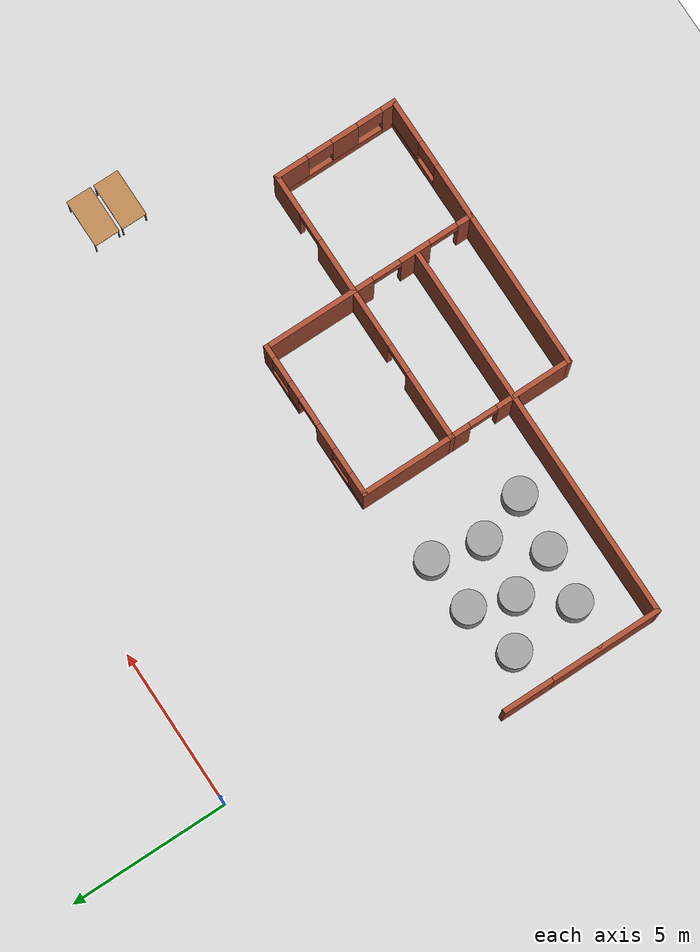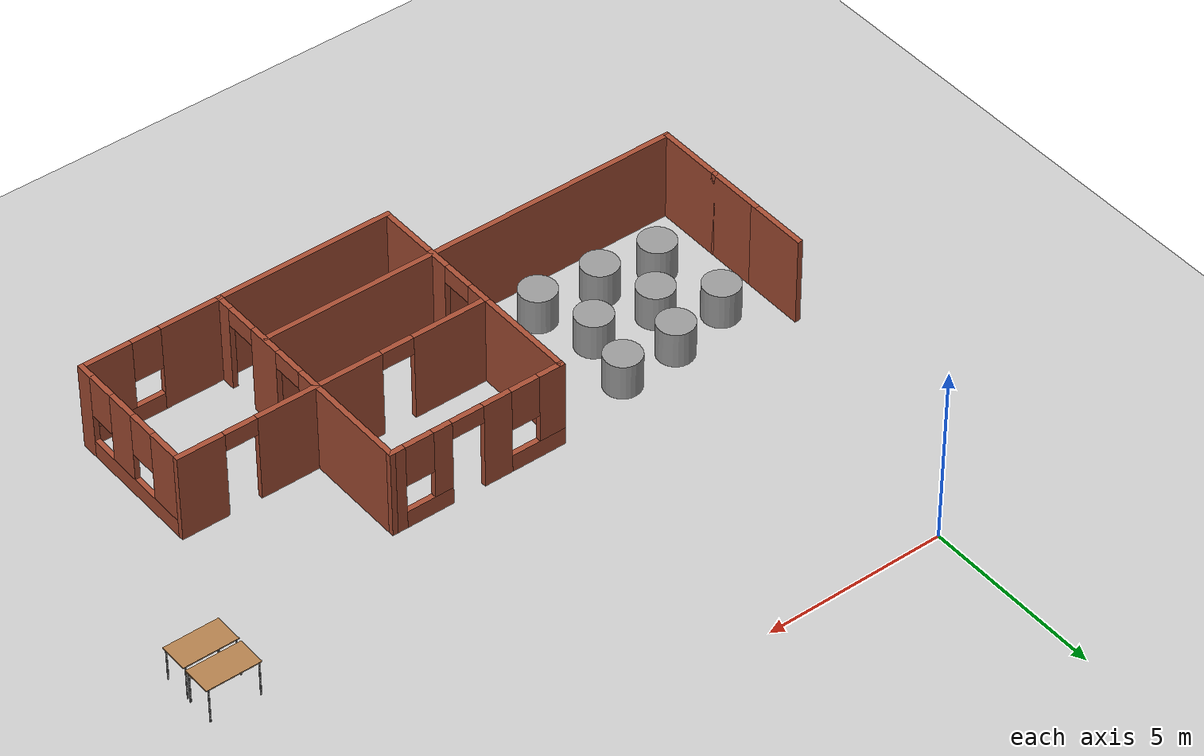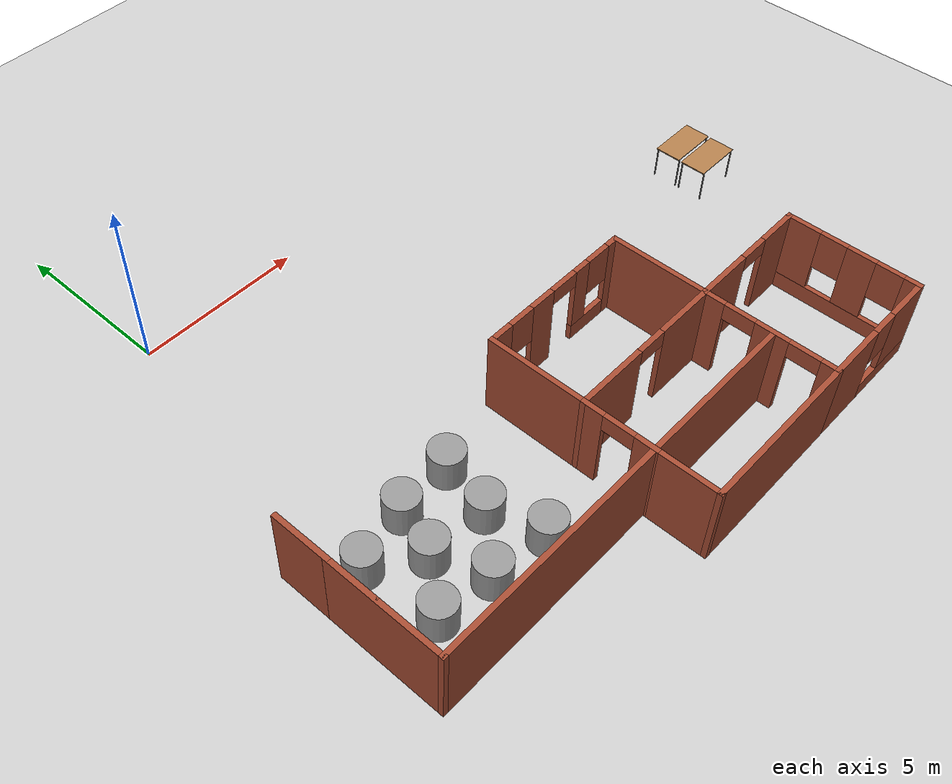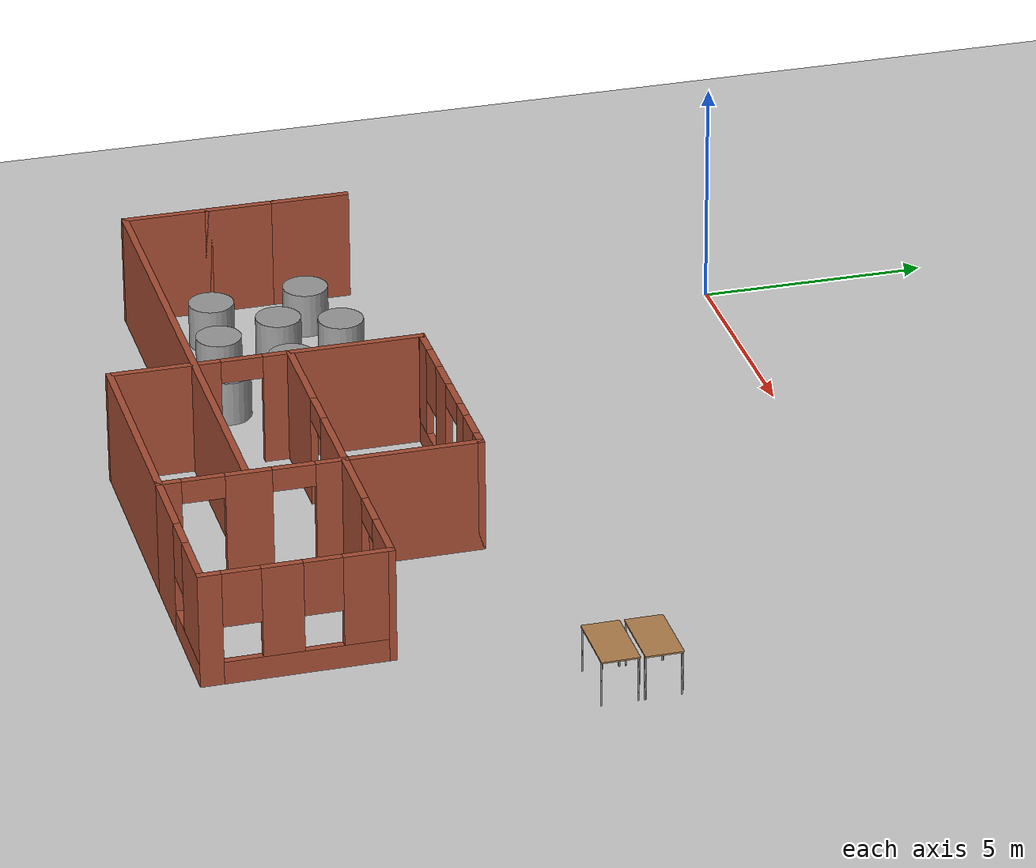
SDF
<sdf version="1.7">
 <world name="default">
  <model name="ground_plane">
   <static>1</static>
   <link name="link">
    <collision name="collision">
     <geometry><plane><normal>0 0 1</normal><size>100 100</size></plane></geometry>
     <surface><friction><ode><mu>100</mu><mu2>50</mu2></ode></friction></surface>
    </collision>
    <visual name="visual">
     <cast_shadows>0</cast_shadows>
     <geometry><plane><normal>0 0 1</normal><size>100 100</size></plane></geometry>
     <material>
      <script><uri>file://media/materials/scripts/gazebo.material</uri><name>Gazebo/Grey</name></script>
     </material>
    </visual>
   </link>
  </model>
  <model name="brick_house2">
   <pose>5.68495 -9.98238 0 0 -0 0</pose>
   <link name="Wall_45">
    <pose>1.60155 -0.643048 0 0 -0 0</pose>
    <visual name="Wall_45_Visual_0">
     <pose>-1.39493 0 1.25 0 -0 0</pose>
     <geometry><box><size>2.21014 0.15 2.5</size></box></geometry>
     <material>
      <script><uri>file://media/materials/scripts/gazebo.material</uri><name>Gazebo/Bricks</name></script>
      <ambient>1 1 1 1</ambient>
     </material>
     <meta><layer>0</layer></meta>
    </visual>
    <collision name="Wall_45_Collision_0">
     <geometry><box><size>2.21014 0.15 2.5</size></box></geometry>
     <pose>-1.39493 0 1.25 0 -0 0</pose>
    </collision>
    <visual name="Wall_45_Visual_1">
     <pose>1.55507 0 1.25 0 -0 0</pose>
     <geometry><box><size>1.88986 0.15 2.5</size></box></geometry>
     <material>
      <script><uri>file://media/materials/scripts/gazebo.material</uri><name>Gazebo/Bricks</name></script>
      <ambient>1 1 1 1</ambient>
     </material>
     <meta><layer>0</layer></meta>
    </visual>
    <collision name="Wall_45_Collision_1">
     <geometry><box><size>1.88986 0.15 2.5</size></box></geometry>
     <pose>1.55507 0 1.25 0 -0 0</pose>
    </collision>
    <visual name="Wall_45_Visual_2">
     <pose>0.160145 0 2.25 0 -0 0</pose>
     <geometry><box><size>0.9 0.15 0.5</size></box></geometry>
     <material>
      <script><uri>file://media/materials/scripts/gazebo.material</uri><name>Gazebo/Bricks</name></script>
      <ambient>1 1 1 1</ambient>
     </material>
     <meta><layer>0</layer></meta>
    </visual>
    <collision name="Wall_45_Collision_2">
     <geometry><box><size>0.9 0.15 0.5</size></box></geometry>
     <pose>0.160145 0 2.25 0 -0 0</pose>
    </collision>
   </link>
   <link name="Wall_46">
    <collision name="Wall_46_Collision">
     <geometry><box><size>3 0.15 2.5</size></box></geometry>
     <pose>0 0 1.25 0 -0 0</pose>
    </collision>
    <visual name="Wall_46_Visual">
     <pose>0 0 1.25 0 -0 0</pose>
     <geometry><box><size>3 0.15 2.5</size></box></geometry>
     <material>
      <script><uri>file://media/materials/scripts/gazebo.material</uri><name>Gazebo/Bricks</name></script>
      <ambient>1 1 1 1</ambient>
     </material>
     <meta><layer>0</layer></meta>
    </visual>
    <pose>4.02655 0.781952 0 0 -0 1.5708</pose>
   </link>
   <link name="Wall_47">
    <pose>1.60155 2.20695 0 0 -0 3.14159</pose>
    <visual name="Wall_47_Visual_0">
     <pose>-2.28479 0 1.25 0 -0 0</pose>
     <geometry><box><size>0.430426 0.15 2.5</size></box></geometry>
     <material>
      <script><uri>file://media/materials/scripts/gazebo.material</uri><name>Gazebo/Bricks</name></script>
      <ambient>1 1 1 1</ambient>
     </material>
     <meta><layer>0</layer></meta>
    </visual>
    <collision name="Wall_47_Collision_0">
     <geometry><box><size>0.430426 0.15 2.5</size></box></geometry>
     <pose>-2.28479 0 1.25 0 -0 0</pose>
    </collision>
    <visual name="Wall_47_Visual_1">
     <pose>0.550959 0 1.25 0 -0 0</pose>
     <geometry><box><size>0.79665 0.15 2.5</size></box></geometry>
     <material>
      <script><uri>file://media/materials/scripts/gazebo.material</uri><name>Gazebo/Bricks</name></script>
      <ambient>1 1 1 1</ambient>
     </material>
     <meta><layer>0</layer></meta>
    </visual>
    <collision name="Wall_47_Collision_1">
     <geometry><box><size>0.79665 0.15 2.5</size></box></geometry>
     <pose>0.550959 0 1.25 0 -0 0</pose>
    </collision>
    <visual name="Wall_47_Visual_2">
     <pose>-1.40847 0 0.25 0 -0 0</pose>
     <geometry><box><size>1.32221 0.15 0.5</size></box></geometry>
     <material>
      <script><uri>file://media/materials/scripts/gazebo.material</uri><name>Gazebo/Bricks</name></script>
      <ambient>1 1 1 1</ambient>
     </material>
     <meta><layer>0</layer></meta>
    </visual>
    <collision name="Wall_47_Collision_2">
     <geometry><box><size>1.32221 0.15 0.5</size></box></geometry>
     <pose>-1.40847 0 0.25 0 -0 0</pose>
    </collision>
    <visual name="Wall_47_Visual_3">
     <pose>1.72464 0 0.25 0 -0 0</pose>
     <geometry><box><size>1.55072 0.15 0.5</size></box></geometry>
     <material>
      <script><uri>file://media/materials/scripts/gazebo.material</uri><name>Gazebo/Bricks</name></script>
      <ambient>1 1 1 1</ambient>
     </material>
     <meta><layer>0</layer></meta>
    </visual>
    <collision name="Wall_47_Collision_3">
     <geometry><box><size>1.55072 0.15 0.5</size></box></geometry>
     <pose>1.72464 0 0.25 0 -0 0</pose>
    </collision>
    <visual name="Wall_47_Visual_4">
     <pose>-1.00847 0 1.5 0 -0 0</pose>
     <geometry><box><size>0.522208 0.15 2</size></box></geometry>
     <material>
      <script><uri>file://media/materials/scripts/gazebo.material</uri><name>Gazebo/Bricks</name></script>
      <ambient>1 1 1 1</ambient>
     </material>
     <meta><layer>0</layer></meta>
    </visual>
    <collision name="Wall_47_Collision_4">
     <geometry><box><size>0.522208 0.15 2</size></box></geometry>
     <pose>-1.00847 0 1.5 0 -0 0</pose>
    </collision>
    <visual name="Wall_47_Visual_5">
     <pose>-1.00847 0 1.5 0 -0 0</pose>
     <geometry><box><size>0.522208 0.15 2</size></box></geometry>
     <material>
      <script><uri>file://media/materials/scripts/gazebo.material</uri><name>Gazebo/Bricks</name></script>
      <ambient>1 1 1 1</ambient>
     </material>
     <meta><layer>0</layer></meta>
    </visual>
    <collision name="Wall_47_Collision_5">
     <geometry><box><size>0.522208 0.15 2</size></box></geometry>
     <pose>-1.00847 0 1.5 0 -0 0</pose>
    </collision>
    <visual name="Wall_47_Visual_6">
     <pose>2.12464 0 1.5 0 -0 0</pose>
     <geometry><box><size>0.750717 0.15 2</size></box></geometry>
     <material>
      <script><uri>file://media/materials/scripts/gazebo.material</uri><name>Gazebo/Bricks</name></script>
      <ambient>1 1 1 1</ambient>
     </material>
     <meta><layer>0</layer></meta>
    </visual>
    <collision name="Wall_47_Collision_6">
     <geometry><box><size>0.750717 0.15 2</size></box></geometry>
     <pose>2.12464 0 1.5 0 -0 0</pose>
    </collision>
    <visual name="Wall_47_Visual_7">
     <pose>-1.66957 0 1.9 0 -0 0</pose>
     <geometry><box><size>0.8 0.15 1.2</size></box></geometry>
     <material>
      <script><uri>file://media/materials/scripts/gazebo.material</uri><name>Gazebo/Bricks</name></script>
      <ambient>1 1 1 1</ambient>
     </material>
     <meta><layer>0</layer></meta>
    </visual>
    <collision name="Wall_47_Collision_7">
     <geometry><box><size>0.8 0.15 1.2</size></box></geometry>
     <pose>-1.66957 0 1.9 0 -0 0</pose>
    </collision>
    <visual name="Wall_47_Visual_8">
     <pose>1.34928 0 1.9 0 -0 0</pose>
     <geometry><box><size>0.8 0.15 1.2</size></box></geometry>
     <material>
      <script><uri>file://media/materials/scripts/gazebo.material</uri><name>Gazebo/Bricks</name></script>
      <ambient>1 1 1 1</ambient>
     </material>
     <meta><layer>0</layer></meta>
    </visual>
    <collision name="Wall_47_Collision_8">
     <geometry><box><size>0.8 0.15 1.2</size></box></geometry>
     <pose>1.34928 0 1.9 0 -0 0</pose>
    </collision>
    <visual name="Wall_47_Visual_9">
     <pose>-0.297366 0 2.25 0 -0 0</pose>
     <geometry><box><size>0.9 0.15 0.5</size></box></geometry>
     <material>
      <script><uri>file://media/materials/scripts/gazebo.material</uri><name>Gazebo/Bricks</name></script>
      <ambient>1 1 1 1</ambient>
     </material>
     <meta><layer>0</layer></meta>
    </visual>
    <collision name="Wall_47_Collision_9">
     <geometry><box><size>0.9 0.15 0.5</size></box></geometry>
     <pose>-0.297366 0 2.25 0 -0 0</pose>
    </collision>
    <visual name="Wall_47_Visual_10">
     <pose>-0.297366 0 2.25 0 -0 0</pose>
     <geometry><box><size>0.9 0.15 0.5</size></box></geometry>
     <material>
      <script><uri>file://media/materials/scripts/gazebo.material</uri><name>Gazebo/Bricks</name></script>
      <ambient>1 1 1 1</ambient>
     </material>
     <meta><layer>0</layer></meta>
    </visual>
    <collision name="Wall_47_Collision_10">
     <geometry><box><size>0.9 0.15 0.5</size></box></geometry>
     <pose>-0.297366 0 2.25 0 -0 0</pose>
    </collision>
   </link>
   <link name="Wall_48">
    <collision name="Wall_48_Collision">
     <geometry><box><size>0.16 0.15 2.5</size></box></geometry>
     <pose>0 0 1.25 0 -0 0</pose>
    </collision>
    <visual name="Wall_48_Visual">
     <pose>0 0 1.25 0 -0 0</pose>
     <geometry><box><size>0.16 0.15 2.5</size></box></geometry>
     <material>
      <script><uri>file://media/materials/scripts/gazebo.material</uri><name>Gazebo/Bricks</name></script>
      <ambient>1 1 1 1</ambient>
     </material>
     <meta><layer>0</layer></meta>
    </visual>
    <pose>-0.818451 2.20695 0 0 -0 0</pose>
   </link>
   <link name="Wall_50">
    <collision name="Wall_50_Collision">
     <geometry><box><size>3 0.15 2.5</size></box></geometry>
     <pose>0 0 1.25 0 -0 0</pose>
    </collision>
    <visual name="Wall_50_Visual">
     <pose>0 0 1.25 0 -0 0</pose>
     <geometry><box><size>3 0.15 2.5</size></box></geometry>
     <material>
      <script><uri>file://media/materials/scripts/gazebo.material</uri><name>Gazebo/Bricks</name></script>
      <ambient>1 1 1 1</ambient>
     </material>
     <meta><layer>0</layer></meta>
    </visual>
    <pose>-0.823451 0.781952 0 0 -0 1.5708</pose>
   </link>
   <link name="Wall_52">
    <pose>5.95155 -0.643048 0 0 -0 0</pose>
    <visual name="Wall_52_Visual_0">
     <pose>-1.11296 0 1.25 0 -0 0</pose>
     <geometry><box><size>1.77408 0.15 2.5</size></box></geometry>
     <material>
      <script><uri>file://media/materials/scripts/gazebo.material</uri><name>Gazebo/Bricks</name></script>
      <ambient>1 1 1 1</ambient>
     </material>
     <meta><layer>0</layer></meta>
    </visual>
    <collision name="Wall_52_Collision_0">
     <geometry><box><size>1.77408 0.15 2.5</size></box></geometry>
     <pose>-1.11296 0 1.25 0 -0 0</pose>
    </collision>
    <visual name="Wall_52_Visual_1">
     <pose>1.33704 0 1.25 0 -0 0</pose>
     <geometry><box><size>1.32592 0.15 2.5</size></box></geometry>
     <material>
      <script><uri>file://media/materials/scripts/gazebo.material</uri><name>Gazebo/Bricks</name></script>
      <ambient>1 1 1 1</ambient>
     </material>
     <meta><layer>0</layer></meta>
    </visual>
    <collision name="Wall_52_Collision_1">
     <geometry><box><size>1.32592 0.15 2.5</size></box></geometry>
     <pose>1.33704 0 1.25 0 -0 0</pose>
    </collision>
    <visual name="Wall_52_Visual_2">
     <pose>0.22408 0 2.25 0 -0 0</pose>
     <geometry><box><size>0.9 0.15 0.5</size></box></geometry>
     <material>
      <script><uri>file://media/materials/scripts/gazebo.material</uri><name>Gazebo/Bricks</name></script>
      <ambient>1 1 1 1</ambient>
     </material>
     <meta><layer>0</layer></meta>
    </visual>
    <collision name="Wall_52_Collision_2">
     <geometry><box><size>0.9 0.15 0.5</size></box></geometry>
     <pose>0.22408 0 2.25 0 -0 0</pose>
    </collision>
   </link>
   <link name="Wall_54">
    <pose>4.02655 -2.56805 0 0 -0 -1.5708</pose>
    <visual name="Wall_54_Visual_0">
     <pose>-1.65357 0 1.25 0 -0 0</pose>
     <geometry><box><size>0.692853 0.15 2.5</size></box></geometry>
     <material>
      <script><uri>file://media/materials/scripts/gazebo.material</uri><name>Gazebo/Bricks</name></script>
      <ambient>1 1 1 1</ambient>
     </material>
     <meta><layer>0</layer></meta>
    </visual>
    <collision name="Wall_54_Collision_0">
     <geometry><box><size>0.692853 0.15 2.5</size></box></geometry>
     <pose>-1.65357 0 1.25 0 -0 0</pose>
    </collision>
    <visual name="Wall_54_Visual_1">
     <pose>0.080528 0 1.25 0 -0 0</pose>
     <geometry><box><size>0.97535 0.15 2.5</size></box></geometry>
     <material>
      <script><uri>file://media/materials/scripts/gazebo.material</uri><name>Gazebo/Bricks</name></script>
      <ambient>1 1 1 1</ambient>
     </material>
     <meta><layer>0</layer></meta>
    </visual>
    <collision name="Wall_54_Collision_1">
     <geometry><box><size>0.97535 0.15 2.5</size></box></geometry>
     <pose>0.080528 0 1.25 0 -0 0</pose>
    </collision>
    <visual name="Wall_54_Visual_2">
     <pose>1.7341 0 1.25 0 -0 0</pose>
     <geometry><box><size>0.531797 0.15 2.5</size></box></geometry>
     <material>
      <script><uri>file://media/materials/scripts/gazebo.material</uri><name>Gazebo/Bricks</name></script>
      <ambient>1 1 1 1</ambient>
     </material>
     <meta><layer>0</layer></meta>
    </visual>
    <collision name="Wall_54_Collision_2">
     <geometry><box><size>0.531797 0.15 2.5</size></box></geometry>
     <pose>1.7341 0 1.25 0 -0 0</pose>
    </collision>
    <visual name="Wall_54_Visual_3">
     <pose>-0.857147 0 2.25 0 -0 0</pose>
     <geometry><box><size>0.9 0.15 0.5</size></box></geometry>
     <material>
      <script><uri>file://media/materials/scripts/gazebo.material</uri><name>Gazebo/Bricks</name></script>
      <ambient>1 1 1 1</ambient>
     </material>
     <meta><layer>0</layer></meta>
    </visual>
    <collision name="Wall_54_Collision_3">
     <geometry><box><size>0.9 0.15 0.5</size></box></geometry>
     <pose>-0.857147 0 2.25 0 -0 0</pose>
    </collision>
    <visual name="Wall_54_Visual_4">
     <pose>1.0182 0 2.25 0 -0 0</pose>
     <geometry><box><size>0.9 0.15 0.5</size></box></geometry>
     <material>
      <script><uri>file://media/materials/scripts/gazebo.material</uri><name>Gazebo/Bricks</name></script>
      <ambient>1 1 1 1</ambient>
     </material>
     <meta><layer>0</layer></meta>
    </visual>
    <collision name="Wall_54_Collision_4">
     <geometry><box><size>0.9 0.15 0.5</size></box></geometry>
     <pose>1.0182 0 2.25 0 -0 0</pose>
    </collision>
   </link>
   <link name="Wall_55">
    <pose>5.95155 -4.49305 0 0 -0 0</pose>
    <visual name="Wall_55_Visual_0">
     <pose>-1.11083 0 1.25 0 -0 0</pose>
     <geometry><box><size>1.77834 0.15 2.5</size></box></geometry>
     <material>
      <script><uri>file://media/materials/scripts/gazebo.material</uri><name>Gazebo/Bricks</name></script>
      <ambient>1 1 1 1</ambient>
     </material>
     <meta><layer>0</layer></meta>
    </visual>
    <collision name="Wall_55_Collision_0">
     <geometry><box><size>1.77834 0.15 2.5</size></box></geometry>
     <pose>-1.11083 0 1.25 0 -0 0</pose>
    </collision>
    <visual name="Wall_55_Visual_1">
     <pose>0.88917 0 0.25 0 -0 0</pose>
     <geometry><box><size>2.22166 0.15 0.5</size></box></geometry>
     <material>
      <script><uri>file://media/materials/scripts/gazebo.material</uri><name>Gazebo/Bricks</name></script>
      <ambient>1 1 1 1</ambient>
     </material>
     <meta><layer>0</layer></meta>
    </visual>
    <collision name="Wall_55_Collision_1">
     <geometry><box><size>2.22166 0.15 0.5</size></box></geometry>
     <pose>0.88917 0 0.25 0 -0 0</pose>
    </collision>
    <visual name="Wall_55_Visual_2">
     <pose>1.28917 0 1.5 0 -0 0</pose>
     <geometry><box><size>1.42166 0.15 2</size></box></geometry>
     <material>
      <script><uri>file://media/materials/scripts/gazebo.material</uri><name>Gazebo/Bricks</name></script>
      <ambient>1 1 1 1</ambient>
     </material>
     <meta><layer>0</layer></meta>
    </visual>
    <collision name="Wall_55_Collision_2">
     <geometry><box><size>1.42166 0.15 2</size></box></geometry>
     <pose>1.28917 0 1.5 0 -0 0</pose>
    </collision>
    <visual name="Wall_55_Visual_3">
     <pose>0.17834 0 1.9 0 -0 0</pose>
     <geometry><box><size>0.8 0.15 1.2</size></box></geometry>
     <material>
      <script><uri>file://media/materials/scripts/gazebo.material</uri><name>Gazebo/Bricks</name></script>
      <ambient>1 1 1 1</ambient>
     </material>
     <meta><layer>0</layer></meta>
    </visual>
    <collision name="Wall_55_Collision_3">
     <geometry><box><size>0.8 0.15 1.2</size></box></geometry>
     <pose>0.17834 0 1.9 0 -0 0</pose>
    </collision>
   </link>
   <link name="Wall_56">
    <pose>7.87655 -2.56805 0 0 -0 1.5708</pose>
    <visual name="Wall_56_Visual_0">
     <pose>-1.75484 0 1.25 0 -0 0</pose>
     <geometry><box><size>0.490316 0.15 2.5</size></box></geometry>
     <material>
      <script><uri>file://media/materials/scripts/gazebo.material</uri><name>Gazebo/Bricks</name></script>
      <ambient>1 1 1 1</ambient>
     </material>
     <meta><layer>0</layer></meta>
    </visual>
    <collision name="Wall_56_Collision_0">
     <geometry><box><size>0.490316 0.15 2.5</size></box></geometry>
     <pose>-1.75484 0 1.25 0 -0 0</pose>
    </collision>
    <visual name="Wall_56_Visual_1">
     <pose>0.245158 0 0.25 0 -0 0</pose>
     <geometry><box><size>3.50968 0.15 0.5</size></box></geometry>
     <material>
      <script><uri>file://media/materials/scripts/gazebo.material</uri><name>Gazebo/Bricks</name></script>
      <ambient>1 1 1 1</ambient>
     </material>
     <meta><layer>0</layer></meta>
    </visual>
    <collision name="Wall_56_Collision_1">
     <geometry><box><size>3.50968 0.15 0.5</size></box></geometry>
     <pose>0.245158 0 0.25 0 -0 0</pose>
    </collision>
    <visual name="Wall_56_Visual_2">
     <pose>-0.286359 0 1.5 0 -0 0</pose>
     <geometry><box><size>0.846649 0.15 2</size></box></geometry>
     <material>
      <script><uri>file://media/materials/scripts/gazebo.material</uri><name>Gazebo/Bricks</name></script>
      <ambient>1 1 1 1</ambient>
     </material>
     <meta><layer>0</layer></meta>
    </visual>
    <collision name="Wall_56_Collision_2">
     <geometry><box><size>0.846649 0.15 2</size></box></geometry>
     <pose>-0.286359 0 1.5 0 -0 0</pose>
    </collision>
    <visual name="Wall_56_Visual_3">
     <pose>1.46848 0 1.5 0 -0 0</pose>
     <geometry><box><size>1.06303 0.15 2</size></box></geometry>
     <material>
      <script><uri>file://media/materials/scripts/gazebo.material</uri><name>Gazebo/Bricks</name></script>
      <ambient>1 1 1 1</ambient>
     </material>
     <meta><layer>0</layer></meta>
    </visual>
    <collision name="Wall_56_Collision_3">
     <geometry><box><size>1.06303 0.15 2</size></box></geometry>
     <pose>1.46848 0 1.5 0 -0 0</pose>
    </collision>
    <visual name="Wall_56_Visual_4">
     <pose>-1.10968 0 1.9 0 -0 0</pose>
     <geometry><box><size>0.8 0.15 1.2</size></box></geometry>
     <material>
      <script><uri>file://media/materials/scripts/gazebo.material</uri><name>Gazebo/Bricks</name></script>
      <ambient>1 1 1 1</ambient>
     </material>
     <meta><layer>0</layer></meta>
    </visual>
    <collision name="Wall_56_Collision_4">
     <geometry><box><size>0.8 0.15 1.2</size></box></geometry>
     <pose>-1.10968 0 1.9 0 -0 0</pose>
    </collision>
    <visual name="Wall_56_Visual_5">
     <pose>0.536965 0 1.9 0 -0 0</pose>
     <geometry><box><size>0.8 0.15 1.2</size></box></geometry>
     <material>
      <script><uri>file://media/materials/scripts/gazebo.material</uri><name>Gazebo/Bricks</name></script>
      <ambient>1 1 1 1</ambient>
     </material>
     <meta><layer>0</layer></meta>
    </visual>
    <collision name="Wall_56_Collision_5">
     <geometry><box><size>0.8 0.15 1.2</size></box></geometry>
     <pose>0.536965 0 1.9 0 -0 0</pose>
    </collision>
   </link>
   <link name="Wall_58">
    <collision name="Wall_58_Collision">
     <geometry><box><size>12 0.15 2.5</size></box></geometry>
     <pose>0 0 1.25 0 -0 0</pose>
    </collision>
    <visual name="Wall_58_Visual">
     <pose>0 0 1.25 0 -0 0</pose>
     <geometry><box><size>12 0.15 2.5</size></box></geometry>
     <material>
      <script><uri>file://media/materials/scripts/gazebo.material</uri><name>Gazebo/Bricks</name></script>
      <ambient>1 1 1 1</ambient>
     </material>
     <meta><layer>0</layer></meta>
    </visual>
    <pose>-1.95155 -2.6899 0 0 -0 3.14159</pose>
   </link>
   <link name="Wall_61">
    <collision name="Wall_61_Collision">
     <geometry><box><size>0.15 0.15 2.5</size></box></geometry>
     <pose>0 0 1.25 0 -0 0</pose>
    </collision>
    <visual name="Wall_61_Visual">
     <pose>0 0 1.25 0 -0 0</pose>
     <geometry><box><size>0.15 0.15 2.5</size></box></geometry>
     <material>
      <script><uri>file://media/materials/scripts/gazebo.material</uri><name>Gazebo/Bricks</name></script>
      <ambient>1 1 1 1</ambient>
     </material>
     <meta><layer>0</layer></meta>
    </visual>
    <pose>-7.87655 -0.839896 0 0 -0 0</pose>
   </link>
   <link name="Wall_67">
    <collision name="Wall_67_Collision">
     <geometry><box><size>3.5 0.15 2.5</size></box></geometry>
     <pose>0 0 1.25 0 -0 0</pose>
    </collision>
    <visual name="Wall_67_Visual">
     <pose>0 0 1.25 0 -0 0</pose>
     <geometry><box><size>3.5 0.15 2.5</size></box></geometry>
     <material>
      <script><uri>file://media/materials/scripts/gazebo.material</uri><name>Gazebo/Bricks</name></script>
      <ambient>1 1 1 1</ambient>
     </material>
     <meta><layer>0</layer></meta>
    </visual>
    <pose>-7.87655 -1.0149 0 0 -0 1.5708</pose>
   </link>
   <link name="Wall_71">
    <collision name="Wall_71_Collision">
     <geometry><box><size>1.75 0.15 2.5</size></box></geometry>
     <pose>0 0 1.25 0 -0 0</pose>
    </collision>
    <visual name="Wall_71_Visual">
     <pose>0 0 1.25 0 -0 0</pose>
     <geometry><box><size>1.75 0.15 2.5</size></box></geometry>
     <material>
      <script><uri>file://media/materials/scripts/gazebo.material</uri><name>Gazebo/Bricks</name></script>
      <ambient>1 1 1 1</ambient>
     </material>
     <meta><layer>0</layer></meta>
    </visual>
    <pose>-7.87655 1.4601 0 0 -0 1.5708</pose>
   </link>
   <link name="Wall_73">
    <pose>-0.823451 -1.69305 0 0 -0 -1.5708</pose>
    <visual name="Wall_73_Visual_0">
     <pose>-0.790009 0 1.25 0 -0 0</pose>
     <geometry><box><size>0.669982 0.15 2.5</size></box></geometry>
     <material>
      <script><uri>file://media/materials/scripts/gazebo.material</uri><name>Gazebo/Bricks</name></script>
      <ambient>1 1 1 1</ambient>
     </material>
     <meta><layer>0</layer></meta>
    </visual>
    <collision name="Wall_73_Collision_0">
     <geometry><box><size>0.669982 0.15 2.5</size></box></geometry>
     <pose>-0.790009 0 1.25 0 -0 0</pose>
    </collision>
    <visual name="Wall_73_Visual_1">
     <pose>0.784991 0 1.25 0 -0 0</pose>
     <geometry><box><size>0.680018 0.15 2.5</size></box></geometry>
     <material>
      <script><uri>file://media/materials/scripts/gazebo.material</uri><name>Gazebo/Bricks</name></script>
      <ambient>1 1 1 1</ambient>
     </material>
     <meta><layer>0</layer></meta>
    </visual>
    <collision name="Wall_73_Collision_1">
     <geometry><box><size>0.680018 0.15 2.5</size></box></geometry>
     <pose>0.784991 0 1.25 0 -0 0</pose>
    </collision>
    <visual name="Wall_73_Visual_2">
     <pose>-0.005018 0 2.25 0 -0 0</pose>
     <geometry><box><size>0.9 0.15 0.5</size></box></geometry>
     <material>
      <script><uri>file://media/materials/scripts/gazebo.material</uri><name>Gazebo/Bricks</name></script>
      <ambient>1 1 1 1</ambient>
     </material>
     <meta><layer>0</layer></meta>
    </visual>
    <collision name="Wall_73_Collision_2">
     <geometry><box><size>0.9 0.15 0.5</size></box></geometry>
     <pose>-0.005018 0 2.25 0 -0 0</pose>
    </collision>
   </link>
   <link name="Wall_76">
    <collision name="Wall_76_Collision">
     <geometry><box><size>5 0.15 2.5</size></box></geometry>
     <pose>0 0 1.25 0 -0 0</pose>
    </collision>
    <visual name="Wall_76_Visual">
     <pose>0 0 1.25 0 -0 0</pose>
     <geometry><box><size>5 0.15 2.5</size></box></geometry>
     <material>
      <script><uri>file://media/materials/scripts/gazebo.material</uri><name>Gazebo/Bricks</name></script>
      <ambient>1 1 1 1</ambient>
     </material>
     <meta><layer>0</layer></meta>
    </visual>
    <pose>1.60155 -4.49305 0 0 -0 3.14159</pose>
   </link>
   <link name="Wall_77">
    <collision name="Wall_77_Collision">
     <geometry><box><size>1.9 0.15 2.5</size></box></geometry>
     <pose>0 0 1.25 0 -0 0</pose>
    </collision>
    <visual name="Wall_77_Visual">
     <pose>0 0 1.25 0 -0 0</pose>
     <geometry><box><size>1.9 0.15 2.5</size></box></geometry>
     <material>
      <script><uri>file://media/materials/scripts/gazebo.material</uri><name>Gazebo/Bricks</name></script>
      <ambient>1 1 1 1</ambient>
     </material>
     <meta><layer>0</layer></meta>
    </visual>
    <pose>-0.823451 -3.61805 0 0 -0 1.5708</pose>
   </link>
   <static>1</static>
  </model>
  <model name="table">
   <static>1</static>
   <link name="link">
    <collision name="surface">
     <pose>0 0 1 0 -0 0</pose>
     <geometry><box><size>1.5 0.8 0.03</size></box></geometry>
     <surface><friction><ode><mu>0.6</mu><mu2>0.6</mu2></ode></friction></surface>
    </collision>
    <visual name="visual1">
     <pose>0 0 1 0 -0 0</pose>
     <geometry><box><size>1.5 0.8 0.03</size></box></geometry>
     <material>
      <script><uri>file://media/materials/scripts/gazebo.material</uri><name>Gazebo/Wood</name></script>
     </material>
    </visual>
    <collision name="front_left_leg">
     <pose>0.68 0.38 0.5 0 -0 0</pose>
     <geometry><cylinder><radius>0.02</radius><length>1</length></cylinder></geometry>
    </collision>
    <visual name="front_left_leg">
     <pose>0.68 0.38 0.5 0 -0 0</pose>
     <geometry><cylinder><radius>0.02</radius><length>1</length></cylinder></geometry>
     <material>
      <script><uri>file://media/materials/scripts/gazebo.material</uri><name>Gazebo/Grey</name></script>
     </material>
    </visual>
    <collision name="front_right_leg">
     <pose>0.68 -0.38 0.5 0 -0 0</pose>
     <geometry><cylinder><radius>0.02</radius><length>1</length></cylinder></geometry>
    </collision>
    <visual name="front_right_leg">
     <pose>0.68 -0.38 0.5 0 -0 0</pose>
     <geometry><cylinder><radius>0.02</radius><length>1</length></cylinder></geometry>
     <material>
      <script><uri>file://media/materials/scripts/gazebo.material</uri><name>Gazebo/Grey</name></script>
     </material>
    </visual>
    <collision name="back_right_leg">
     <pose>-0.68 -0.38 0.5 0 -0 0</pose>
     <geometry><cylinder><radius>0.02</radius><length>1</length></cylinder></geometry>
    </collision>
    <visual name="back_right_leg">
     <pose>-0.68 -0.38 0.5 0 -0 0</pose>
     <geometry><cylinder><radius>0.02</radius><length>1</length></cylinder></geometry>
     <material>
      <script><uri>file://media/materials/scripts/gazebo.material</uri><name>Gazebo/Grey</name></script>
     </material>
    </visual>
    <collision name="back_left_leg">
     <pose>-0.68 0.38 0.5 0 -0 0</pose>
     <geometry><cylinder><radius>0.02</radius><length>1</length></cylinder></geometry>
    </collision>
    <visual name="back_left_leg">
     <pose>-0.68 0.38 0.5 0 -0 0</pose>
     <geometry><cylinder><radius>0.02</radius><length>1</length></cylinder></geometry>
     <material>
      <script><uri>file://media/materials/scripts/gazebo.material</uri><name>Gazebo/Grey</name></script>
     </material>
    </visual>
   </link>
   <pose>15.7203 -6.74599 0 0 -0 0</pose>
  </model>
  <model name="table_0">
   <static>1</static>
   <link name="link">
    <collision name="surface">
     <pose>0 0 1 0 -0 0</pose>
     <geometry><box><size>1.5 0.8 0.03</size></box></geometry>
     <surface><friction><ode><mu>0.6</mu><mu2>0.6</mu2></ode></friction></surface>
    </collision>
    <visual name="visual1">
     <pose>0 0 1 0 -0 0</pose>
     <geometry><box><size>1.5 0.8 0.03</size></box></geometry>
     <material>
      <script><uri>file://media/materials/scripts/gazebo.material</uri><name>Gazebo/Wood</name></script>
     </material>
    </visual>
    <collision name="front_left_leg">
     <pose>0.68 0.38 0.5 0 -0 0</pose>
     <geometry><cylinder><radius>0.02</radius><length>1</length></cylinder></geometry>
    </collision>
    <visual name="front_left_leg">
     <pose>0.68 0.38 0.5 0 -0 0</pose>
     <geometry><cylinder><radius>0.02</radius><length>1</length></cylinder></geometry>
     <material>
      <script><uri>file://media/materials/scripts/gazebo.material</uri><name>Gazebo/Grey</name></script>
     </material>
    </visual>
    <collision name="front_right_leg">
     <pose>0.68 -0.38 0.5 0 -0 0</pose>
     <geometry><cylinder><radius>0.02</radius><length>1</length></cylinder></geometry>
    </collision>
    <visual name="front_right_leg">
     <pose>0.68 -0.38 0.5 0 -0 0</pose>
     <geometry><cylinder><radius>0.02</radius><length>1</length></cylinder></geometry>
     <material>
      <script><uri>file://media/materials/scripts/gazebo.material</uri><name>Gazebo/Grey</name></script>
     </material>
    </visual>
    <collision name="back_right_leg">
     <pose>-0.68 -0.38 0.5 0 -0 0</pose>
     <geometry><cylinder><radius>0.02</radius><length>1</length></cylinder></geometry>
    </collision>
    <visual name="back_right_leg">
     <pose>-0.68 -0.38 0.5 0 -0 0</pose>
     <geometry><cylinder><radius>0.02</radius><length>1</length></cylinder></geometry>
     <material>
      <script><uri>file://media/materials/scripts/gazebo.material</uri><name>Gazebo/Grey</name></script>
     </material>
    </visual>
    <collision name="back_left_leg">
     <pose>-0.68 0.38 0.5 0 -0 0</pose>
     <geometry><cylinder><radius>0.02</radius><length>1</length></cylinder></geometry>
    </collision>
    <visual name="back_left_leg">
     <pose>-0.68 0.38 0.5 0 -0 0</pose>
     <geometry><cylinder><radius>0.02</radius><length>1</length></cylinder></geometry>
     <material>
      <script><uri>file://media/materials/scripts/gazebo.material</uri><name>Gazebo/Grey</name></script>
     </material>
    </visual>
   </link>
   <pose>15.7319 -5.85647 0 0 -0 0</pose>
  </model>
  <model name="unit_cylinder">
   <pose>-0.672444 -11.1208 0.499996 4e-06 3e-06 -0</pose>
   <link name="link">
    <inertial>
     <mass>1</mass>
     <inertia><ixx>0.145833</ixx><ixy>0</ixy><ixz>0</ixz><iyy>0.145833</iyy><iyz>0</iyz><izz>0.125</izz></inertia>
    </inertial>
    <collision name="collision">
     <geometry><cylinder><radius>0.5</radius><length>1</length></cylinder></geometry>
    </collision>
    <visual name="visual">
     <geometry><cylinder><radius>0.5</radius><length>1</length></cylinder></geometry>
     <material>
      <script><name>Gazebo/Grey</name><uri>file://media/materials/scripts/gazebo.material</uri></script>
     </material>
    </visual>
   </link>
  </model>
  <model name="unit_cylinder_0">
   <pose>0.93456 -11.314 0.499996 4e-06 3e-06 -0</pose>
   <link name="link">
    <inertial>
     <mass>1</mass>
     <inertia><ixx>0.145833</ixx><ixy>0</ixy><ixz>0</ixz><iyy>0.145833</iyy><iyz>0</iyz><izz>0.125</izz></inertia>
    </inertial>
    <collision name="collision">
     <geometry><cylinder><radius>0.5</radius><length>1</length></cylinder></geometry>
    </collision>
    <visual name="visual">
     <geometry><cylinder><radius>0.5</radius><length>1</length></cylinder></geometry>
     <material>
      <script><name>Gazebo/Grey</name><uri>file://media/materials/scripts/gazebo.material</uri></script>
     </material>
    </visual>
   </link>
  </model>
  <model name="unit_cylinder_1">
   <pose>0.385155 -9.86339 0.499992 -3e-06 2e-06 0</pose>
   <link name="link">
    <inertial>
     <mass>1</mass>
     <inertia><ixx>0.145833</ixx><ixy>0</ixy><ixz>0</ixz><iyy>0.145833</iyy><iyz>0</iyz><izz>0.125</izz></inertia>
    </inertial>
    <collision name="collision">
     <geometry><cylinder><radius>0.5</radius><length>1</length></cylinder></geometry>
    </collision>
    <visual name="visual">
     <geometry><cylinder><radius>0.5</radius><length>1</length></cylinder></geometry>
     <material>
      <script><name>Gazebo/Grey</name><uri>file://media/materials/scripts/gazebo.material</uri></script>
     </material>
    </visual>
   </link>
  </model>
  <model name="unit_cylinder_2">
   <pose>2.16318 -9.98694 0.499998 3e-06 -2e-06 0</pose>
   <link name="link">
    <inertial>
     <mass>1</mass>
     <inertia><ixx>0.145833</ixx><ixy>0</ixy><ixz>0</ixz><iyy>0.145833</iyy><iyz>0</iyz><izz>0.125</izz></inertia>
    </inertial>
    <collision name="collision">
     <geometry><cylinder><radius>0.5</radius><length>1</length></cylinder></geometry>
    </collision>
    <visual name="visual">
     <geometry><cylinder><radius>0.5</radius><length>1</length></cylinder></geometry>
     <material>
      <script><name>Gazebo/Grey</name><uri>file://media/materials/scripts/gazebo.material</uri></script>
     </material>
    </visual>
   </link>
  </model>
  <model name="unit_cylinder_3">
   <pose>2.66201 -11.4997 0.499998 3e-06 -2e-06 0</pose>
   <link name="link">
    <inertial>
     <mass>1</mass>
     <inertia><ixx>0.145833</ixx><ixy>0</ixy><ixz>0</ixz><iyy>0.145833</iyy><iyz>0</iyz><izz>0.125</izz></inertia>
    </inertial>
    <collision name="collision">
     <geometry><cylinder><radius>0.5</radius><length>1</length></cylinder></geometry>
    </collision>
    <visual name="visual">
     <geometry><cylinder><radius>0.5</radius><length>1</length></cylinder></geometry>
     <material>
      <script><name>Gazebo/Grey</name><uri>file://media/materials/scripts/gazebo.material</uri></script>
     </material>
    </visual>
   </link>
  </model>
  <model name="unit_cylinder_4">
   <pose>2.49648 -8.4571 0.499992 -3e-06 2e-06 0</pose>
   <link name="link">
    <inertial>
     <mass>1</mass>
     <inertia><ixx>0.145833</ixx><ixy>0</ixy><ixz>0</ixz><iyy>0.145833</iyy><iyz>0</iyz><izz>0.125</izz></inertia>
    </inertial>
    <collision name="collision">
     <geometry><cylinder><radius>0.5</radius><length>1</length></cylinder></geometry>
    </collision>
    <visual name="visual">
     <geometry><cylinder><radius>0.5</radius><length>1</length></cylinder></geometry>
     <material>
      <script><name>Gazebo/Grey</name><uri>file://media/materials/scripts/gazebo.material</uri></script>
     </material>
    </visual>
   </link>
  </model>
  <model name="unit_cylinder_5">
   <pose>0.814992 -8.5662 0.499998 3e-06 -2e-06 0</pose>
   <link name="link">
    <inertial>
     <mass>1</mass>
     <inertia><ixx>0.145833</ixx><ixy>0</ixy><ixz>0</ixz><iyy>0.145833</iyy><iyz>0</iyz><izz>0.125</izz></inertia>
    </inertial>
    <collision name="collision">
     <geometry><cylinder><radius>0.5</radius><length>1</length></cylinder></geometry>
    </collision>
    <visual name="visual">
     <geometry><cylinder><radius>0.5</radius><length>1</length></cylinder></geometry>
     <material>
      <script><name>Gazebo/Grey</name><uri>file://media/materials/scripts/gazebo.material</uri></script>
     </material>
    </visual>
   </link>
  </model>
  <model name="unit_cylinder_6">
   <pose>-0.895644 -8.9565 0.499998 3e-06 -2e-06 0</pose>
   <link name="link">
    <inertial>
     <mass>1</mass>
     <inertia><ixx>0.145833</ixx><ixy>0</ixy><ixz>0</ixz><iyy>0.145833</iyy><iyz>0</iyz><izz>0.125</izz></inertia>
    </inertial>
    <collision name="collision">
     <geometry><cylinder><radius>0.5</radius><length>1</length></cylinder></geometry>
    </collision>
    <visual name="visual">
     <geometry><cylinder><radius>0.5</radius><length>1</length></cylinder></geometry>
     <material>
      <script><name>Gazebo/Grey</name><uri>file://media/materials/scripts/gazebo.material</uri></script>
     </material>
    </visual>
   </link>
  </model>
 </world>
</sdf>
